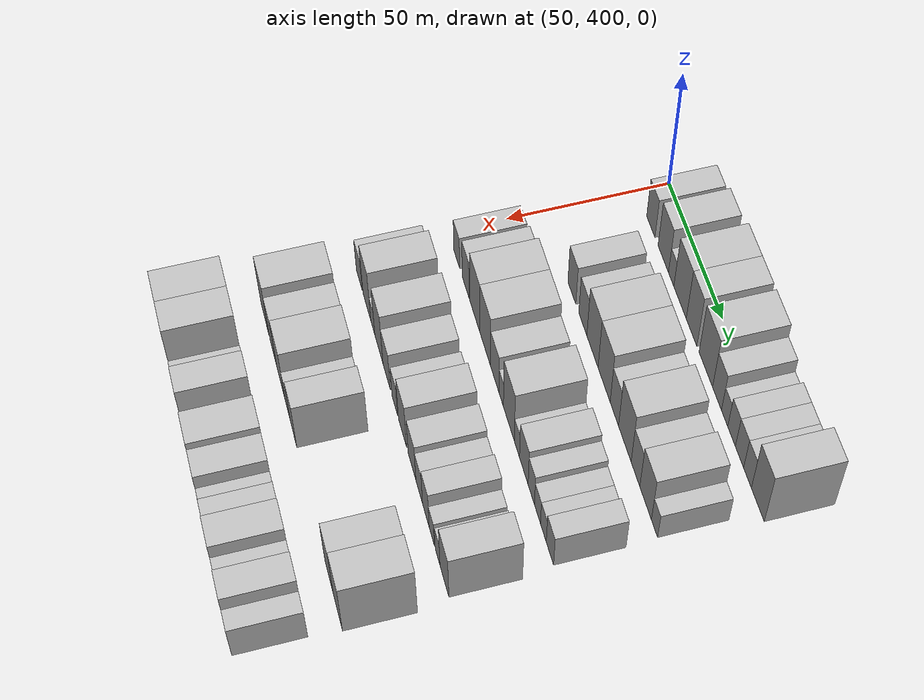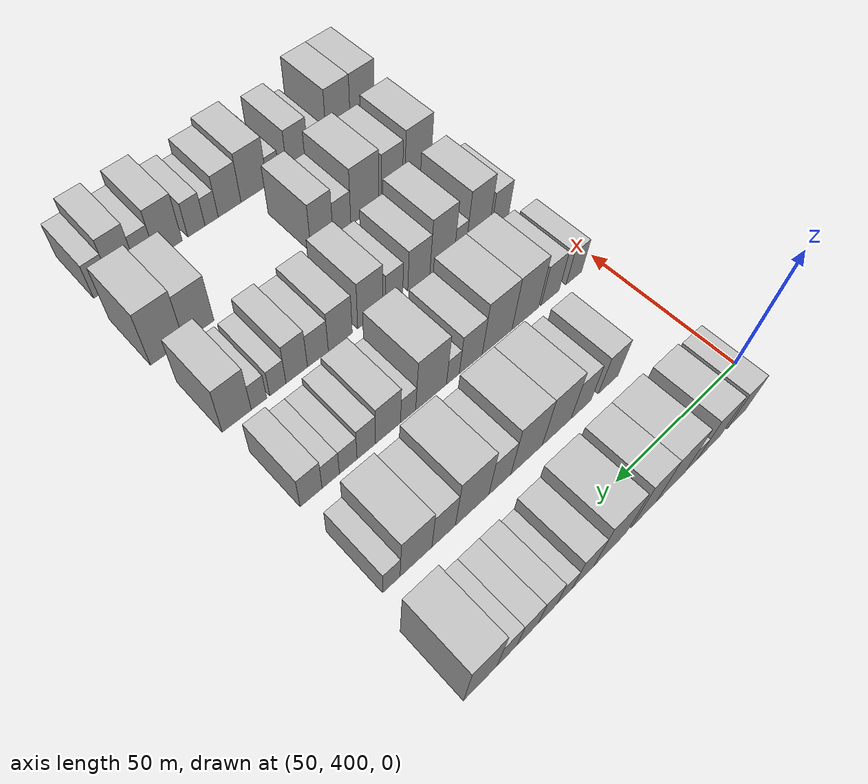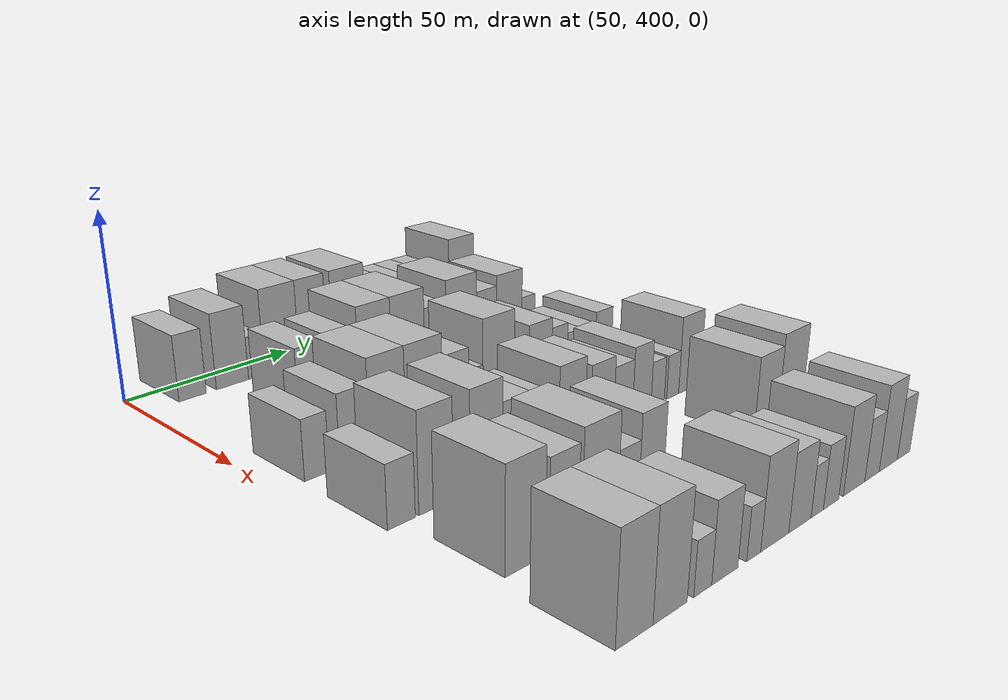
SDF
<sdf version="1.6">
 <world name="default">
  <model name="building_101">
   <static>1</static>
   <pose>50.0000 413.7388 0 0.000000 0.000000 0.000000</pose>
   <link name="link">
    <pose>0 0 9.00 0 0 0</pose>
    <collision name="collision"><geometry><box><size>20.0000 7.9604 18.0000</size></box></geometry></collision>
    <visual name="visual">
     <cast_shadows>0</cast_shadows>
     <geometry><box><size>20.0000 7.9604 18.0000</size></box></geometry>
     <material>
      <script>
       <uri>model://HANNAS_wall/materials/scripts</uri>
       <uri>model://HANNAS_wall/materials/textures</uri>
       <name>vrc/HANNAS_wall</name>
      </script>
     </material>
    </visual>
   </link>
  </model>
  <model name="building_102">
   <static>1</static>
   <pose>50.0000 425.6670 0 0.000000 0.000000 0.000000</pose>
   <link name="link">
    <pose>0 0 10.50 0 0 0</pose>
    <collision name="collision"><geometry><box><size>20.0000 9.8961 21.0000</size></box></geometry></collision>
    <visual name="visual">
     <cast_shadows>0</cast_shadows>
     <geometry><box><size>20.0000 9.8961 21.0000</size></box></geometry>
     <material>
      <script>
       <uri>model://HANNAS_wall/materials/scripts</uri>
       <uri>model://HANNAS_wall/materials/textures</uri>
       <name>vrc/HANNAS_wall</name>
      </script>
     </material>
    </visual>
   </link>
  </model>
  <model name="building_103">
   <static>1</static>
   <pose>50.0000 433.1329 0 0.000000 0.000000 0.000000</pose>
   <link name="link">
    <pose>0 0 6.00 0 0 0</pose>
    <collision name="collision"><geometry><box><size>20.0000 5.0356 12.0000</size></box></geometry></collision>
    <visual name="visual">
     <cast_shadows>0</cast_shadows>
     <geometry><box><size>20.0000 5.0356 12.0000</size></box></geometry>
     <material>
      <script>
       <uri>model://HANNAS_wall/materials/scripts</uri>
       <uri>model://HANNAS_wall/materials/textures</uri>
       <name>vrc/HANNAS_wall</name>
      </script>
     </material>
    </visual>
   </link>
  </model>
  <model name="building_104">
   <static>1</static>
   <pose>50.0000 441.3849 0 0.000000 0.000000 0.000000</pose>
   <link name="link">
    <pose>0 0 12.00 0 0 0</pose>
    <collision name="collision"><geometry><box><size>20.0000 11.4684 24.0000</size></box></geometry></collision>
    <visual name="visual">
     <cast_shadows>0</cast_shadows>
     <geometry><box><size>20.0000 11.4684 24.0000</size></box></geometry>
     <material>
      <script>
       <uri>model://HANNAS_wall/materials/scripts</uri>
       <uri>model://HANNAS_wall/materials/textures</uri>
       <name>vrc/HANNAS_wall</name>
      </script>
     </material>
    </visual>
   </link>
  </model>
  <model name="building_105">
   <static>1</static>
   <pose>50.0000 451.9271 0 0.000000 0.000000 0.000000</pose>
   <link name="link">
    <pose>0 0 12.00 0 0 0</pose>
    <collision name="collision"><geometry><box><size>20.0000 9.6160 24.0000</size></box></geometry></collision>
    <visual name="visual">
     <cast_shadows>0</cast_shadows>
     <geometry><box><size>20.0000 9.6160 24.0000</size></box></geometry>
     <material>
      <script>
       <uri>model://HANNAS_wall/materials/scripts</uri>
       <uri>model://HANNAS_wall/materials/textures</uri>
       <name>vrc/HANNAS_wall</name>
      </script>
     </material>
    </visual>
   </link>
  </model>
  <model name="building_106">
   <static>1</static>
   <pose>50.0000 464.7077 0 0.000000 0.000000 0.000000</pose>
   <link name="link">
    <pose>0 0 12.00 0 0 0</pose>
    <collision name="collision"><geometry><box><size>20.0000 11.9453 24.0000</size></box></geometry></collision>
    <visual name="visual">
     <cast_shadows>0</cast_shadows>
     <geometry><box><size>20.0000 11.9453 24.0000</size></box></geometry>
     <material>
      <script>
       <uri>model://HANNAS_wall/materials/scripts</uri>
       <uri>model://HANNAS_wall/materials/textures</uri>
       <name>vrc/HANNAS_wall</name>
      </script>
     </material>
    </visual>
   </link>
  </model>
  <model name="building_107">
   <static>1</static>
   <pose>50.0000 474.5362 0 0.000000 0.000000 0.000000</pose>
   <link name="link">
    <pose>0 0 9.00 0 0 0</pose>
    <collision name="collision"><geometry><box><size>20.0000 7.7115 18.0000</size></box></geometry></collision>
    <visual name="visual">
     <cast_shadows>0</cast_shadows>
     <geometry><box><size>20.0000 7.7115 18.0000</size></box></geometry>
     <material>
      <script>
       <uri>model://HANNAS_wall/materials/scripts</uri>
       <uri>model://HANNAS_wall/materials/textures</uri>
       <name>vrc/HANNAS_wall</name>
      </script>
     </material>
    </visual>
   </link>
  </model>
  <model name="building_108">
   <static>1</static>
   <pose>50.0000 481.1138 0 0.000000 0.000000 0.000000</pose>
   <link name="link">
    <pose>0 0 6.00 0 0 0</pose>
    <collision name="collision"><geometry><box><size>20.0000 5.4438 12.0000</size></box></geometry></collision>
    <visual name="visual">
     <cast_shadows>0</cast_shadows>
     <geometry><box><size>20.0000 5.4438 12.0000</size></box></geometry>
     <material>
      <script>
       <uri>model://HANNAS_wall/materials/scripts</uri>
       <uri>model://HANNAS_wall/materials/textures</uri>
       <name>vrc/HANNAS_wall</name>
      </script>
     </material>
    </visual>
   </link>
  </model>
  <model name="building_109">
   <static>1</static>
   <pose>50.0000 487.0704 0 0.000000 0.000000 0.000000</pose>
   <link name="link">
    <pose>0 0 7.50 0 0 0</pose>
    <collision name="collision"><geometry><box><size>20.0000 6.4696 15.0000</size></box></geometry></collision>
    <visual name="visual">
     <cast_shadows>0</cast_shadows>
     <geometry><box><size>20.0000 6.4696 15.0000</size></box></geometry>
     <material>
      <script>
       <uri>model://HANNAS_wall/materials/scripts</uri>
       <uri>model://HANNAS_wall/materials/textures</uri>
       <name>vrc/HANNAS_wall</name>
      </script>
     </material>
    </visual>
   </link>
  </model>
  <model name="building_110">
   <static>1</static>
   <pose>50.0000 493.7465 0 0.000000 0.000000 0.000000</pose>
   <link name="link">
    <pose>0 0 7.50 0 0 0</pose>
    <collision name="collision"><geometry><box><size>20.0000 6.8826 15.0000</size></box></geometry></collision>
    <visual name="visual">
     <cast_shadows>0</cast_shadows>
     <geometry><box><size>20.0000 6.8826 15.0000</size></box></geometry>
     <material>
      <script>
       <uri>model://HANNAS_wall/materials/scripts</uri>
       <uri>model://HANNAS_wall/materials/textures</uri>
       <name>vrc/HANNAS_wall</name>
      </script>
     </material>
    </visual>
   </link>
  </model>
  <model name="building_111">
   <static>1</static>
   <pose>50.0000 500.4157 0 0.000000 0.000000 0.000000</pose>
   <link name="link">
    <pose>0 0 7.50 0 0 0</pose>
    <collision name="collision"><geometry><box><size>20.0000 6.4557 15.0000</size></box></geometry></collision>
    <visual name="visual">
     <cast_shadows>0</cast_shadows>
     <geometry><box><size>20.0000 6.4557 15.0000</size></box></geometry>
     <material>
      <script>
       <uri>model://HANNAS_wall/materials/scripts</uri>
       <uri>model://HANNAS_wall/materials/textures</uri>
       <name>vrc/HANNAS_wall</name>
      </script>
     </material>
    </visual>
   </link>
  </model>
  <model name="building_112">
   <static>1</static>
   <pose>50.0000 508.8999 0 0.000000 0.000000 0.000000</pose>
   <link name="link">
    <pose>0 0 12.00 0 0 0</pose>
    <collision name="collision"><geometry><box><size>20.0000 10.5128 24.0000</size></box></geometry></collision>
    <visual name="visual">
     <cast_shadows>0</cast_shadows>
     <geometry><box><size>20.0000 10.5128 24.0000</size></box></geometry>
     <material>
      <script>
       <uri>model://HANNAS_wall/materials/scripts</uri>
       <uri>model://HANNAS_wall/materials/textures</uri>
       <name>vrc/HANNAS_wall</name>
      </script>
     </material>
    </visual>
   </link>
  </model>
  <model name="building_217">
   <static>1</static>
   <pose>79.0000 430.1788 0 0.000000 0.000000 0.000000</pose>
   <link name="link">
    <pose>0 0 9.00 0 0 0</pose>
    <collision name="collision"><geometry><box><size>20.0000 8.0644 18.0000</size></box></geometry></collision>
    <visual name="visual">
     <cast_shadows>0</cast_shadows>
     <geometry><box><size>20.0000 8.0644 18.0000</size></box></geometry>
     <material>
      <script>
       <uri>model://HANNAS_wall/materials/scripts</uri>
       <uri>model://HANNAS_wall/materials/textures</uri>
       <name>vrc/HANNAS_wall</name>
      </script>
     </material>
    </visual>
   </link>
  </model>
  <model name="building_218">
   <static>1</static>
   <pose>79.0000 441.2250 0 0.000000 0.000000 0.000000</pose>
   <link name="link">
    <pose>0 0 9.00 0 0 0</pose>
    <collision name="collision"><geometry><box><size>20.0000 8.0279 18.0000</size></box></geometry></collision>
    <visual name="visual">
     <cast_shadows>0</cast_shadows>
     <geometry><box><size>20.0000 8.0279 18.0000</size></box></geometry>
     <material>
      <script>
       <uri>model://HANNAS_wall/materials/scripts</uri>
       <uri>model://HANNAS_wall/materials/textures</uri>
       <name>vrc/HANNAS_wall</name>
      </script>
     </material>
    </visual>
   </link>
  </model>
  <model name="building_219">
   <static>1</static>
   <pose>79.0000 450.7496 0 0.000000 0.000000 0.000000</pose>
   <link name="link">
    <pose>0 0 12.00 0 0 0</pose>
    <collision name="collision"><geometry><box><size>20.0000 11.0213 24.0000</size></box></geometry></collision>
    <visual name="visual">
     <cast_shadows>0</cast_shadows>
     <geometry><box><size>20.0000 11.0213 24.0000</size></box></geometry>
     <material>
      <script>
       <uri>model://HANNAS_wall/materials/scripts</uri>
       <uri>model://HANNAS_wall/materials/textures</uri>
       <name>vrc/HANNAS_wall</name>
      </script>
     </material>
    </visual>
   </link>
  </model>
  <model name="building_220">
   <static>1</static>
   <pose>79.0000 462.0957 0 0.000000 0.000000 0.000000</pose>
   <link name="link">
    <pose>0 0 12.00 0 0 0</pose>
    <collision name="collision"><geometry><box><size>20.0000 11.6708 24.0000</size></box></geometry></collision>
    <visual name="visual">
     <cast_shadows>0</cast_shadows>
     <geometry><box><size>20.0000 11.6708 24.0000</size></box></geometry>
     <material>
      <script>
       <uri>model://HANNAS_wall/materials/scripts</uri>
       <uri>model://HANNAS_wall/materials/textures</uri>
       <name>vrc/HANNAS_wall</name>
      </script>
     </material>
    </visual>
   </link>
  </model>
  <model name="building_221">
   <static>1</static>
   <pose>79.0000 471.8856 0 0.000000 0.000000 0.000000</pose>
   <link name="link">
    <pose>0 0 9.00 0 0 0</pose>
    <collision name="collision"><geometry><box><size>20.0000 7.9091 18.0000</size></box></geometry></collision>
    <visual name="visual">
     <cast_shadows>0</cast_shadows>
     <geometry><box><size>20.0000 7.9091 18.0000</size></box></geometry>
     <material>
      <script>
       <uri>model://HANNAS_wall/materials/scripts</uri>
       <uri>model://HANNAS_wall/materials/textures</uri>
       <name>vrc/HANNAS_wall</name>
      </script>
     </material>
    </visual>
   </link>
  </model>
  <model name="building_222">
   <static>1</static>
   <pose>79.0000 481.6791 0 0.000000 0.000000 0.000000</pose>
   <link name="link">
    <pose>0 0 12.00 0 0 0</pose>
    <collision name="collision"><geometry><box><size>20.0000 11.6781 24.0000</size></box></geometry></collision>
    <visual name="visual">
     <cast_shadows>0</cast_shadows>
     <geometry><box><size>20.0000 11.6781 24.0000</size></box></geometry>
     <material>
      <script>
       <uri>model://HANNAS_wall/materials/scripts</uri>
       <uri>model://HANNAS_wall/materials/textures</uri>
       <name>vrc/HANNAS_wall</name>
      </script>
     </material>
    </visual>
   </link>
  </model>
  <model name="building_223">
   <static>1</static>
   <pose>79.0000 491.4690 0 0.000000 0.000000 0.000000</pose>
   <link name="link">
    <pose>0 0 9.00 0 0 0</pose>
    <collision name="collision"><geometry><box><size>20.0000 7.9017 18.0000</size></box></geometry></collision>
    <visual name="visual">
     <cast_shadows>0</cast_shadows>
     <geometry><box><size>20.0000 7.9017 18.0000</size></box></geometry>
     <material>
      <script>
       <uri>model://HANNAS_wall/materials/scripts</uri>
       <uri>model://HANNAS_wall/materials/textures</uri>
       <name>vrc/HANNAS_wall</name>
      </script>
     </material>
    </visual>
   </link>
  </model>
  <model name="building_224">
   <static>1</static>
   <pose>79.0000 500.5907 0 0.000000 0.000000 0.000000</pose>
   <link name="link">
    <pose>0 0 10.50 0 0 0</pose>
    <collision name="collision"><geometry><box><size>20.0000 10.3416 21.0000</size></box></geometry></collision>
    <visual name="visual">
     <cast_shadows>0</cast_shadows>
     <geometry><box><size>20.0000 10.3416 21.0000</size></box></geometry>
     <material>
      <script>
       <uri>model://HANNAS_wall/materials/scripts</uri>
       <uri>model://HANNAS_wall/materials/textures</uri>
       <name>vrc/HANNAS_wall</name>
      </script>
     </material>
    </visual>
   </link>
  </model>
  <model name="building_225">
   <static>1</static>
   <pose>79.0000 508.5070 0 0.000000 0.000000 0.000000</pose>
   <link name="link">
    <pose>0 0 6.00 0 0 0</pose>
    <collision name="collision"><geometry><box><size>20.0000 5.4911 12.0000</size></box></geometry></collision>
    <visual name="visual">
     <cast_shadows>0</cast_shadows>
     <geometry><box><size>20.0000 5.4911 12.0000</size></box></geometry>
     <material>
      <script>
       <uri>model://HANNAS_wall/materials/scripts</uri>
       <uri>model://HANNAS_wall/materials/textures</uri>
       <name>vrc/HANNAS_wall</name>
      </script>
     </material>
    </visual>
   </link>
  </model>
  <model name="building_325">
   <static>1</static>
   <pose>108.0000 410.2638 0 0.000000 0.000000 0.000000</pose>
   <link name="link">
    <pose>0 0 7.50 0 0 0</pose>
    <collision name="collision"><geometry><box><size>20.0000 6.7455 15.0000</size></box></geometry></collision>
    <visual name="visual">
     <cast_shadows>0</cast_shadows>
     <geometry><box><size>20.0000 6.7455 15.0000</size></box></geometry>
     <material>
      <script>
       <uri>model://HANNAS_wall/materials/scripts</uri>
       <uri>model://HANNAS_wall/materials/textures</uri>
       <name>vrc/HANNAS_wall</name>
      </script>
     </material>
    </visual>
   </link>
  </model>
  <model name="building_326">
   <static>1</static>
   <pose>108.0000 420.4646 0 0.000000 0.000000 0.000000</pose>
   <link name="link">
    <pose>0 0 9.00 0 0 0</pose>
    <collision name="collision"><geometry><box><size>20.0000 7.6561 18.0000</size></box></geometry></collision>
    <visual name="visual">
     <cast_shadows>0</cast_shadows>
     <geometry><box><size>20.0000 7.6561 18.0000</size></box></geometry>
     <material>
      <script>
       <uri>model://HANNAS_wall/materials/scripts</uri>
       <uri>model://HANNAS_wall/materials/textures</uri>
       <name>vrc/HANNAS_wall</name>
      </script>
     </material>
    </visual>
   </link>
  </model>
  <model name="building_327">
   <static>1</static>
   <pose>108.0000 430.7641 0 0.000000 0.000000 0.000000</pose>
   <link name="link">
    <pose>0 0 12.00 0 0 0</pose>
    <collision name="collision"><geometry><box><size>20.0000 10.9428 24.0000</size></box></geometry></collision>
    <visual name="visual">
     <cast_shadows>0</cast_shadows>
     <geometry><box><size>20.0000 10.9428 24.0000</size></box></geometry>
     <material>
      <script>
       <uri>model://HANNAS_wall/materials/scripts</uri>
       <uri>model://HANNAS_wall/materials/textures</uri>
       <name>vrc/HANNAS_wall</name>
      </script>
     </material>
    </visual>
   </link>
  </model>
  <model name="building_328">
   <static>1</static>
   <pose>108.0000 442.1375 0 0.000000 0.000000 0.000000</pose>
   <link name="link">
    <pose>0 0 12.00 0 0 0</pose>
    <collision name="collision"><geometry><box><size>20.0000 11.8039 24.0000</size></box></geometry></collision>
    <visual name="visual">
     <cast_shadows>0</cast_shadows>
     <geometry><box><size>20.0000 11.8039 24.0000</size></box></geometry>
     <material>
      <script>
       <uri>model://HANNAS_wall/materials/scripts</uri>
       <uri>model://HANNAS_wall/materials/textures</uri>
       <name>vrc/HANNAS_wall</name>
      </script>
     </material>
    </visual>
   </link>
  </model>
  <model name="building_329">
   <static>1</static>
   <pose>108.0000 452.4334 0 0.000000 0.000000 0.000000</pose>
   <link name="link">
    <pose>0 0 9.00 0 0 0</pose>
    <collision name="collision"><geometry><box><size>20.0000 8.7878 18.0000</size></box></geometry></collision>
    <visual name="visual">
     <cast_shadows>0</cast_shadows>
     <geometry><box><size>20.0000 8.7878 18.0000</size></box></geometry>
     <material>
      <script>
       <uri>model://HANNAS_wall/materials/scripts</uri>
       <uri>model://HANNAS_wall/materials/textures</uri>
       <name>vrc/HANNAS_wall</name>
      </script>
     </material>
    </visual>
   </link>
  </model>
  <model name="building_330">
   <static>1</static>
   <pose>108.0000 459.2490 0 0.000000 0.000000 0.000000</pose>
   <link name="link">
    <pose>0 0 6.00 0 0 0</pose>
    <collision name="collision"><geometry><box><size>20.0000 4.8435 12.0000</size></box></geometry></collision>
    <visual name="visual">
     <cast_shadows>0</cast_shadows>
     <geometry><box><size>20.0000 4.8435 12.0000</size></box></geometry>
     <material>
      <script>
       <uri>model://HANNAS_wall/materials/scripts</uri>
       <uri>model://HANNAS_wall/materials/textures</uri>
       <name>vrc/HANNAS_wall</name>
      </script>
     </material>
    </visual>
   </link>
  </model>
  <model name="building_331">
   <static>1</static>
   <pose>108.0000 467.2997 0 0.000000 0.000000 0.000000</pose>
   <link name="link">
    <pose>0 0 12.00 0 0 0</pose>
    <collision name="collision"><geometry><box><size>20.0000 11.2579 24.0000</size></box></geometry></collision>
    <visual name="visual">
     <cast_shadows>0</cast_shadows>
     <geometry><box><size>20.0000 11.2579 24.0000</size></box></geometry>
     <material>
      <script>
       <uri>model://HANNAS_wall/materials/scripts</uri>
       <uri>model://HANNAS_wall/materials/textures</uri>
       <name>vrc/HANNAS_wall</name>
      </script>
     </material>
    </visual>
   </link>
  </model>
  <model name="building_332">
   <static>1</static>
   <pose>108.0000 475.6202 0 0.000000 0.000000 0.000000</pose>
   <link name="link">
    <pose>0 0 6.00 0 0 0</pose>
    <collision name="collision"><geometry><box><size>20.0000 5.3829 12.0000</size></box></geometry></collision>
    <visual name="visual">
     <cast_shadows>0</cast_shadows>
     <geometry><box><size>20.0000 5.3829 12.0000</size></box></geometry>
     <material>
      <script>
       <uri>model://HANNAS_wall/materials/scripts</uri>
       <uri>model://HANNAS_wall/materials/textures</uri>
       <name>vrc/HANNAS_wall</name>
      </script>
     </material>
    </visual>
   </link>
  </model>
  <model name="building_333">
   <static>1</static>
   <pose>108.0000 482.6681 0 0.000000 0.000000 0.000000</pose>
   <link name="link">
    <pose>0 0 9.00 0 0 0</pose>
    <collision name="collision"><geometry><box><size>20.0000 8.7129 18.0000</size></box></geometry></collision>
    <visual name="visual">
     <cast_shadows>0</cast_shadows>
     <geometry><box><size>20.0000 8.7129 18.0000</size></box></geometry>
     <material>
      <script>
       <uri>model://HANNAS_wall/materials/scripts</uri>
       <uri>model://HANNAS_wall/materials/textures</uri>
       <name>vrc/HANNAS_wall</name>
      </script>
     </material>
    </visual>
   </link>
  </model>
  <model name="building_334">
   <static>1</static>
   <pose>108.0000 490.1605 0 0.000000 0.000000 0.000000</pose>
   <link name="link">
    <pose>0 0 7.50 0 0 0</pose>
    <collision name="collision"><geometry><box><size>20.0000 6.2719 15.0000</size></box></geometry></collision>
    <visual name="visual">
     <cast_shadows>0</cast_shadows>
     <geometry><box><size>20.0000 6.2719 15.0000</size></box></geometry>
     <material>
      <script>
       <uri>model://HANNAS_wall/materials/scripts</uri>
       <uri>model://HANNAS_wall/materials/textures</uri>
       <name>vrc/HANNAS_wall</name>
      </script>
     </material>
    </visual>
   </link>
  </model>
  <model name="building_335">
   <static>1</static>
   <pose>108.0000 496.2352 0 0.000000 0.000000 0.000000</pose>
   <link name="link">
    <pose>0 0 6.00 0 0 0</pose>
    <collision name="collision"><geometry><box><size>20.0000 5.8776 12.0000</size></box></geometry></collision>
    <visual name="visual">
     <cast_shadows>0</cast_shadows>
     <geometry><box><size>20.0000 5.8776 12.0000</size></box></geometry>
     <material>
      <script>
       <uri>model://HANNAS_wall/materials/scripts</uri>
       <uri>model://HANNAS_wall/materials/textures</uri>
       <name>vrc/HANNAS_wall</name>
      </script>
     </material>
    </visual>
   </link>
  </model>
  <model name="building_336">
   <static>1</static>
   <pose>108.0000 502.0043 0 0.000000 0.000000 0.000000</pose>
   <link name="link">
    <pose>0 0 6.00 0 0 0</pose>
    <collision name="collision"><geometry><box><size>20.0000 5.6604 12.0000</size></box></geometry></collision>
    <visual name="visual">
     <cast_shadows>0</cast_shadows>
     <geometry><box><size>20.0000 5.6604 12.0000</size></box></geometry>
     <material>
      <script>
       <uri>model://HANNAS_wall/materials/scripts</uri>
       <uri>model://HANNAS_wall/materials/textures</uri>
       <name>vrc/HANNAS_wall</name>
      </script>
     </material>
    </visual>
   </link>
  </model>
  <model name="building_337">
   <static>1</static>
   <pose>108.0000 508.3584 0 0.000000 0.000000 0.000000</pose>
   <link name="link">
    <pose>0 0 7.50 0 0 0</pose>
    <collision name="collision"><geometry><box><size>20.0000 7.0478 15.0000</size></box></geometry></collision>
    <visual name="visual">
     <cast_shadows>0</cast_shadows>
     <geometry><box><size>20.0000 7.0478 15.0000</size></box></geometry>
     <material>
      <script>
       <uri>model://HANNAS_wall/materials/scripts</uri>
       <uri>model://HANNAS_wall/materials/textures</uri>
       <name>vrc/HANNAS_wall</name>
      </script>
     </material>
    </visual>
   </link>
  </model>
  <model name="building_437">
   <static>1</static>
   <pose>137.0000 410.0616 0 0.000000 0.000000 0.000000</pose>
   <link name="link">
    <pose>0 0 7.50 0 0 0</pose>
    <collision name="collision"><geometry><box><size>20.0000 7.4933 15.0000</size></box></geometry></collision>
    <visual name="visual">
     <cast_shadows>0</cast_shadows>
     <geometry><box><size>20.0000 7.4933 15.0000</size></box></geometry>
     <material>
      <script>
       <uri>model://HANNAS_wall/materials/scripts</uri>
       <uri>model://HANNAS_wall/materials/textures</uri>
       <name>vrc/HANNAS_wall</name>
      </script>
     </material>
    </visual>
   </link>
  </model>
  <model name="building_438">
   <static>1</static>
   <pose>137.0000 419.7083 0 0.000000 0.000000 0.000000</pose>
   <link name="link">
    <pose>0 0 12.00 0 0 0</pose>
    <collision name="collision"><geometry><box><size>20.0000 9.8002 24.0000</size></box></geometry></collision>
    <visual name="visual">
     <cast_shadows>0</cast_shadows>
     <geometry><box><size>20.0000 9.8002 24.0000</size></box></geometry>
     <material>
      <script>
       <uri>model://HANNAS_wall/materials/scripts</uri>
       <uri>model://HANNAS_wall/materials/textures</uri>
       <name>vrc/HANNAS_wall</name>
      </script>
     </material>
    </visual>
   </link>
  </model>
  <model name="building_439">
   <static>1</static>
   <pose>137.0000 427.0982 0 0.000000 0.000000 0.000000</pose>
   <link name="link">
    <pose>0 0 6.00 0 0 0</pose>
    <collision name="collision"><geometry><box><size>20.0000 4.9795 12.0000</size></box></geometry></collision>
    <visual name="visual">
     <cast_shadows>0</cast_shadows>
     <geometry><box><size>20.0000 4.9795 12.0000</size></box></geometry>
     <material>
      <script>
       <uri>model://HANNAS_wall/materials/scripts</uri>
       <uri>model://HANNAS_wall/materials/textures</uri>
       <name>vrc/HANNAS_wall</name>
      </script>
     </material>
    </visual>
   </link>
  </model>
  <model name="building_440">
   <static>1</static>
   <pose>137.0000 434.5330 0 0.000000 0.000000 0.000000</pose>
   <link name="link">
    <pose>0 0 12.00 0 0 0</pose>
    <collision name="collision"><geometry><box><size>20.0000 9.8902 24.0000</size></box></geometry></collision>
    <visual name="visual">
     <cast_shadows>0</cast_shadows>
     <geometry><box><size>20.0000 9.8902 24.0000</size></box></geometry>
     <material>
      <script>
       <uri>model://HANNAS_wall/materials/scripts</uri>
       <uri>model://HANNAS_wall/materials/textures</uri>
       <name>vrc/HANNAS_wall</name>
      </script>
     </material>
    </visual>
   </link>
  </model>
  <model name="building_441">
   <static>1</static>
   <pose>137.0000 443.8494 0 0.000000 0.000000 0.000000</pose>
   <link name="link">
    <pose>0 0 9.00 0 0 0</pose>
    <collision name="collision"><geometry><box><size>20.0000 8.7425 18.0000</size></box></geometry></collision>
    <visual name="visual">
     <cast_shadows>0</cast_shadows>
     <geometry><box><size>20.0000 8.7425 18.0000</size></box></geometry>
     <material>
      <script>
       <uri>model://HANNAS_wall/materials/scripts</uri>
       <uri>model://HANNAS_wall/materials/textures</uri>
       <name>vrc/HANNAS_wall</name>
      </script>
     </material>
    </visual>
   </link>
  </model>
  <model name="building_442">
   <static>1</static>
   <pose>137.0000 453.5243 0 0.000000 0.000000 0.000000</pose>
   <link name="link">
    <pose>0 0 7.50 0 0 0</pose>
    <collision name="collision"><geometry><box><size>20.0000 6.6074 15.0000</size></box></geometry></collision>
    <visual name="visual">
     <cast_shadows>0</cast_shadows>
     <geometry><box><size>20.0000 6.6074 15.0000</size></box></geometry>
     <material>
      <script>
       <uri>model://HANNAS_wall/materials/scripts</uri>
       <uri>model://HANNAS_wall/materials/textures</uri>
       <name>vrc/HANNAS_wall</name>
      </script>
     </material>
    </visual>
   </link>
  </model>
  <model name="building_443">
   <static>1</static>
   <pose>137.0000 462.5215 0 0.000000 0.000000 0.000000</pose>
   <link name="link">
    <pose>0 0 10.50 0 0 0</pose>
    <collision name="collision"><geometry><box><size>20.0000 9.3868 21.0000</size></box></geometry></collision>
    <visual name="visual">
     <cast_shadows>0</cast_shadows>
     <geometry><box><size>20.0000 9.3868 21.0000</size></box></geometry>
     <material>
      <script>
       <uri>model://HANNAS_wall/materials/scripts</uri>
       <uri>model://HANNAS_wall/materials/textures</uri>
       <name>vrc/HANNAS_wall</name>
      </script>
     </material>
    </visual>
   </link>
  </model>
  <model name="building_444">
   <static>1</static>
   <pose>137.0000 473.5411 0 0.000000 0.000000 0.000000</pose>
   <link name="link">
    <pose>0 0 9.00 0 0 0</pose>
    <collision name="collision"><geometry><box><size>20.0000 8.6524 18.0000</size></box></geometry></collision>
    <visual name="visual">
     <cast_shadows>0</cast_shadows>
     <geometry><box><size>20.0000 8.6524 18.0000</size></box></geometry>
     <material>
      <script>
       <uri>model://HANNAS_wall/materials/scripts</uri>
       <uri>model://HANNAS_wall/materials/textures</uri>
       <name>vrc/HANNAS_wall</name>
      </script>
     </material>
    </visual>
   </link>
  </model>
  <model name="building_445">
   <static>1</static>
   <pose>137.0000 481.5412 0 0.000000 0.000000 0.000000</pose>
   <link name="link">
    <pose>0 0 7.50 0 0 0</pose>
    <collision name="collision"><geometry><box><size>20.0000 7.3478 15.0000</size></box></geometry></collision>
    <visual name="visual">
     <cast_shadows>0</cast_shadows>
     <geometry><box><size>20.0000 7.3478 15.0000</size></box></geometry>
     <material>
      <script>
       <uri>model://HANNAS_wall/materials/scripts</uri>
       <uri>model://HANNAS_wall/materials/textures</uri>
       <name>vrc/HANNAS_wall</name>
      </script>
     </material>
    </visual>
   </link>
  </model>
  <model name="building_446">
   <static>1</static>
   <pose>137.0000 488.9160 0 0.000000 0.000000 0.000000</pose>
   <link name="link">
    <pose>0 0 9.00 0 0 0</pose>
    <collision name="collision"><geometry><box><size>20.0000 7.4019 18.0000</size></box></geometry></collision>
    <visual name="visual">
     <cast_shadows>0</cast_shadows>
     <geometry><box><size>20.0000 7.4019 18.0000</size></box></geometry>
     <material>
      <script>
       <uri>model://HANNAS_wall/materials/scripts</uri>
       <uri>model://HANNAS_wall/materials/textures</uri>
       <name>vrc/HANNAS_wall</name>
      </script>
     </material>
    </visual>
   </link>
  </model>
  <model name="building_447">
   <static>1</static>
   <pose>137.0000 495.3746 0 0.000000 0.000000 0.000000</pose>
   <link name="link">
    <pose>0 0 6.00 0 0 0</pose>
    <collision name="collision"><geometry><box><size>20.0000 5.5153 12.0000</size></box></geometry></collision>
    <visual name="visual">
     <cast_shadows>0</cast_shadows>
     <geometry><box><size>20.0000 5.5153 12.0000</size></box></geometry>
     <material>
      <script>
       <uri>model://HANNAS_wall/materials/scripts</uri>
       <uri>model://HANNAS_wall/materials/textures</uri>
       <name>vrc/HANNAS_wall</name>
      </script>
     </material>
    </visual>
   </link>
  </model>
  <model name="building_448">
   <static>1</static>
   <pose>137.0000 501.6869 0 0.000000 0.000000 0.000000</pose>
   <link name="link">
    <pose>0 0 6.00 0 0 0</pose>
    <collision name="collision"><geometry><box><size>20.0000 5.1093 12.0000</size></box></geometry></collision>
    <visual name="visual">
     <cast_shadows>0</cast_shadows>
     <geometry><box><size>20.0000 5.1093 12.0000</size></box></geometry>
     <material>
      <script>
       <uri>model://HANNAS_wall/materials/scripts</uri>
       <uri>model://HANNAS_wall/materials/textures</uri>
       <name>vrc/HANNAS_wall</name>
      </script>
     </material>
    </visual>
   </link>
  </model>
  <model name="building_449">
   <static>1</static>
   <pose>137.0000 508.9641 0 0.000000 0.000000 0.000000</pose>
   <link name="link">
    <pose>0 0 10.50 0 0 0</pose>
    <collision name="collision"><geometry><box><size>20.0000 9.4451 21.0000</size></box></geometry></collision>
    <visual name="visual">
     <cast_shadows>0</cast_shadows>
     <geometry><box><size>20.0000 9.4451 21.0000</size></box></geometry>
     <material>
      <script>
       <uri>model://HANNAS_wall/materials/scripts</uri>
       <uri>model://HANNAS_wall/materials/textures</uri>
       <name>vrc/HANNAS_wall</name>
      </script>
     </material>
    </visual>
   </link>
  </model>
  <model name="building_546">
   <static>1</static>
   <pose>166.0000 416.4637 0 0.000000 0.000000 0.000000</pose>
   <link name="link">
    <pose>0 0 12.00 0 0 0</pose>
    <collision name="collision"><geometry><box><size>20.0000 11.1097 24.0000</size></box></geometry></collision>
    <visual name="visual">
     <cast_shadows>0</cast_shadows>
     <geometry><box><size>20.0000 11.1097 24.0000</size></box></geometry>
     <material>
      <script>
       <uri>model://HANNAS_wall/materials/scripts</uri>
       <uri>model://HANNAS_wall/materials/textures</uri>
       <name>vrc/HANNAS_wall</name>
      </script>
     </material>
    </visual>
   </link>
  </model>
  <model name="building_547">
   <static>1</static>
   <pose>166.0000 427.3898 0 0.000000 0.000000 0.000000</pose>
   <link name="link">
    <pose>0 0 10.50 0 0 0</pose>
    <collision name="collision"><geometry><box><size>20.0000 8.7425 21.0000</size></box></geometry></collision>
    <visual name="visual">
     <cast_shadows>0</cast_shadows>
     <geometry><box><size>20.0000 8.7425 21.0000</size></box></geometry>
     <material>
      <script>
       <uri>model://HANNAS_wall/materials/scripts</uri>
       <uri>model://HANNAS_wall/materials/textures</uri>
       <name>vrc/HANNAS_wall</name>
      </script>
     </material>
    </visual>
   </link>
  </model>
  <model name="building_548">
   <static>1</static>
   <pose>166.0000 438.4074 0 0.000000 0.000000 0.000000</pose>
   <link name="link">
    <pose>0 0 12.00 0 0 0</pose>
    <collision name="collision"><geometry><box><size>20.0000 11.2927 24.0000</size></box></geometry></collision>
    <visual name="visual">
     <cast_shadows>0</cast_shadows>
     <geometry><box><size>20.0000 11.2927 24.0000</size></box></geometry>
     <material>
      <script>
       <uri>model://HANNAS_wall/materials/scripts</uri>
       <uri>model://HANNAS_wall/materials/textures</uri>
       <name>vrc/HANNAS_wall</name>
      </script>
     </material>
    </visual>
   </link>
  </model>
  <model name="building_549">
   <static>1</static>
   <pose>166.0000 447.5360 0 0.000000 0.000000 0.000000</pose>
   <link name="link">
    <pose>0 0 7.50 0 0 0</pose>
    <collision name="collision"><geometry><box><size>20.0000 6.9645 15.0000</size></box></geometry></collision>
    <visual name="visual">
     <cast_shadows>0</cast_shadows>
     <geometry><box><size>20.0000 6.9645 15.0000</size></box></geometry>
     <material>
      <script>
       <uri>model://HANNAS_wall/materials/scripts</uri>
       <uri>model://HANNAS_wall/materials/textures</uri>
       <name>vrc/HANNAS_wall</name>
      </script>
     </material>
    </visual>
   </link>
  </model>
  <model name="building_550">
   <static>1</static>
   <pose>166.0000 455.2702 0 0.000000 0.000000 0.000000</pose>
   <link name="link">
    <pose>0 0 10.50 0 0 0</pose>
    <collision name="collision"><geometry><box><size>20.0000 8.5039 21.0000</size></box></geometry></collision>
    <visual name="visual">
     <cast_shadows>0</cast_shadows>
     <geometry><box><size>20.0000 8.5039 21.0000</size></box></geometry>
     <material>
      <script>
       <uri>model://HANNAS_wall/materials/scripts</uri>
       <uri>model://HANNAS_wall/materials/textures</uri>
       <name>vrc/HANNAS_wall</name>
      </script>
     </material>
    </visual>
   </link>
  </model>
  <model name="building_551">
   <static>1</static>
   <pose>166.0000 499.7434 0 0.000000 0.000000 0.000000</pose>
   <link name="link">
    <pose>0 0 10.50 0 0 0</pose>
    <collision name="collision"><geometry><box><size>20.0000 10.1475 21.0000</size></box></geometry></collision>
    <visual name="visual">
     <cast_shadows>0</cast_shadows>
     <geometry><box><size>20.0000 10.1475 21.0000</size></box></geometry>
     <material>
      <script>
       <uri>model://HANNAS_wall/materials/scripts</uri>
       <uri>model://HANNAS_wall/materials/textures</uri>
       <name>vrc/HANNAS_wall</name>
      </script>
     </material>
    </visual>
   </link>
  </model>
  <model name="building_552">
   <static>1</static>
   <pose>166.0000 510.3302 0 0.000000 0.000000 0.000000</pose>
   <link name="link">
    <pose>0 0 12.00 0 0 0</pose>
    <collision name="collision"><geometry><box><size>20.0000 11.0262 24.0000</size></box></geometry></collision>
    <visual name="visual">
     <cast_shadows>0</cast_shadows>
     <geometry><box><size>20.0000 11.0262 24.0000</size></box></geometry>
     <material>
      <script>
       <uri>model://HANNAS_wall/materials/scripts</uri>
       <uri>model://HANNAS_wall/materials/textures</uri>
       <name>vrc/HANNAS_wall</name>
      </script>
     </material>
    </visual>
   </link>
  </model>
  <model name="building_662">
   <static>1</static>
   <pose>195.0000 413.3688 0 0.000000 0.000000 0.000000</pose>
   <link name="link">
    <pose>0 0 12.00 0 0 0</pose>
    <collision name="collision"><geometry><box><size>20.0000 10.3660 24.0000</size></box></geometry></collision>
    <visual name="visual">
     <cast_shadows>0</cast_shadows>
     <geometry><box><size>20.0000 10.3660 24.0000</size></box></geometry>
     <material>
      <script>
       <uri>model://HANNAS_wall/materials/scripts</uri>
       <uri>model://HANNAS_wall/materials/textures</uri>
       <name>vrc/HANNAS_wall</name>
      </script>
     </material>
    </visual>
   </link>
  </model>
  <model name="building_663">
   <static>1</static>
   <pose>195.0000 423.5832 0 0.000000 0.000000 0.000000</pose>
   <link name="link">
    <pose>0 0 12.00 0 0 0</pose>
    <collision name="collision"><geometry><box><size>20.0000 10.0628 24.0000</size></box></geometry></collision>
    <visual name="visual">
     <cast_shadows>0</cast_shadows>
     <geometry><box><size>20.0000 10.0628 24.0000</size></box></geometry>
     <material>
      <script>
       <uri>model://HANNAS_wall/materials/scripts</uri>
       <uri>model://HANNAS_wall/materials/textures</uri>
       <name>vrc/HANNAS_wall</name>
      </script>
     </material>
    </visual>
   </link>
  </model>
  <model name="building_664">
   <static>1</static>
   <pose>195.0000 433.4201 0 0.000000 0.000000 0.000000</pose>
   <link name="link">
    <pose>0 0 6.00 0 0 0</pose>
    <collision name="collision"><geometry><box><size>20.0000 5.6111 12.0000</size></box></geometry></collision>
    <visual name="visual">
     <cast_shadows>0</cast_shadows>
     <geometry><box><size>20.0000 5.6111 12.0000</size></box></geometry>
     <material>
      <script>
       <uri>model://HANNAS_wall/materials/scripts</uri>
       <uri>model://HANNAS_wall/materials/textures</uri>
       <name>vrc/HANNAS_wall</name>
      </script>
     </material>
    </visual>
   </link>
  </model>
  <model name="building_665">
   <static>1</static>
   <pose>195.0000 440.5349 0 0.000000 0.000000 0.000000</pose>
   <link name="link">
    <pose>0 0 9.00 0 0 0</pose>
    <collision name="collision"><geometry><box><size>20.0000 8.6185 18.0000</size></box></geometry></collision>
    <visual name="visual">
     <cast_shadows>0</cast_shadows>
     <geometry><box><size>20.0000 8.6185 18.0000</size></box></geometry>
     <material>
      <script>
       <uri>model://HANNAS_wall/materials/scripts</uri>
       <uri>model://HANNAS_wall/materials/textures</uri>
       <name>vrc/HANNAS_wall</name>
      </script>
     </material>
    </visual>
   </link>
  </model>
  <model name="building_666">
   <static>1</static>
   <pose>195.0000 450.2711 0 0.000000 0.000000 0.000000</pose>
   <link name="link">
    <pose>0 0 6.00 0 0 0</pose>
    <collision name="collision"><geometry><box><size>20.0000 4.8540 12.0000</size></box></geometry></collision>
    <visual name="visual">
     <cast_shadows>0</cast_shadows>
     <geometry><box><size>20.0000 4.8540 12.0000</size></box></geometry>
     <material>
      <script>
       <uri>model://HANNAS_wall/materials/scripts</uri>
       <uri>model://HANNAS_wall/materials/textures</uri>
       <name>vrc/HANNAS_wall</name>
      </script>
     </material>
    </visual>
   </link>
  </model>
  <model name="building_667">
   <static>1</static>
   <pose>195.0000 457.7836 0 0.000000 0.000000 0.000000</pose>
   <link name="link">
    <pose>0 0 10.50 0 0 0</pose>
    <collision name="collision"><geometry><box><size>20.0000 10.1709 21.0000</size></box></geometry></collision>
    <visual name="visual">
     <cast_shadows>0</cast_shadows>
     <geometry><box><size>20.0000 10.1709 21.0000</size></box></geometry>
     <material>
      <script>
       <uri>model://HANNAS_wall/materials/scripts</uri>
       <uri>model://HANNAS_wall/materials/textures</uri>
       <name>vrc/HANNAS_wall</name>
      </script>
     </material>
    </visual>
   </link>
  </model>
  <model name="building_668">
   <static>1</static>
   <pose>195.0000 467.1638 0 0.000000 0.000000 0.000000</pose>
   <link name="link">
    <pose>0 0 9.00 0 0 0</pose>
    <collision name="collision"><geometry><box><size>20.0000 8.5895 18.0000</size></box></geometry></collision>
    <visual name="visual">
     <cast_shadows>0</cast_shadows>
     <geometry><box><size>20.0000 8.5895 18.0000</size></box></geometry>
     <material>
      <script>
       <uri>model://HANNAS_wall/materials/scripts</uri>
       <uri>model://HANNAS_wall/materials/textures</uri>
       <name>vrc/HANNAS_wall</name>
      </script>
     </material>
    </visual>
   </link>
  </model>
  <model name="building_669">
   <static>1</static>
   <pose>195.0000 473.9071 0 0.000000 0.000000 0.000000</pose>
   <link name="link">
    <pose>0 0 6.00 0 0 0</pose>
    <collision name="collision"><geometry><box><size>20.0000 4.8970 12.0000</size></box></geometry></collision>
    <visual name="visual">
     <cast_shadows>0</cast_shadows>
     <geometry><box><size>20.0000 4.8970 12.0000</size></box></geometry>
     <material>
      <script>
       <uri>model://HANNAS_wall/materials/scripts</uri>
       <uri>model://HANNAS_wall/materials/textures</uri>
       <name>vrc/HANNAS_wall</name>
      </script>
     </material>
    </visual>
   </link>
  </model>
  <model name="building_670">
   <static>1</static>
   <pose>195.0000 479.5011 0 0.000000 0.000000 0.000000</pose>
   <link name="link">
    <pose>0 0 7.50 0 0 0</pose>
    <collision name="collision"><geometry><box><size>20.0000 6.2910 15.0000</size></box></geometry></collision>
    <visual name="visual">
     <cast_shadows>0</cast_shadows>
     <geometry><box><size>20.0000 6.2910 15.0000</size></box></geometry>
     <material>
      <script>
       <uri>model://HANNAS_wall/materials/scripts</uri>
       <uri>model://HANNAS_wall/materials/textures</uri>
       <name>vrc/HANNAS_wall</name>
      </script>
     </material>
    </visual>
   </link>
  </model>
  <model name="building_671">
   <static>1</static>
   <pose>195.0000 489.2890 0 0.000000 0.000000 0.000000</pose>
   <link name="link">
    <pose>0 0 10.50 0 0 0</pose>
    <collision name="collision"><geometry><box><size>20.0000 9.2848 21.0000</size></box></geometry></collision>
    <visual name="visual">
     <cast_shadows>0</cast_shadows>
     <geometry><box><size>20.0000 9.2848 21.0000</size></box></geometry>
     <material>
      <script>
       <uri>model://HANNAS_wall/materials/scripts</uri>
       <uri>model://HANNAS_wall/materials/textures</uri>
       <name>vrc/HANNAS_wall</name>
      </script>
     </material>
    </visual>
   </link>
  </model>
  <model name="building_672">
   <static>1</static>
   <pose>195.0000 497.1951 0 0.000000 0.000000 0.000000</pose>
   <link name="link">
    <pose>0 0 7.50 0 0 0</pose>
    <collision name="collision"><geometry><box><size>20.0000 6.5275 15.0000</size></box></geometry></collision>
    <visual name="visual">
     <cast_shadows>0</cast_shadows>
     <geometry><box><size>20.0000 6.5275 15.0000</size></box></geometry>
     <material>
      <script>
       <uri>model://HANNAS_wall/materials/scripts</uri>
       <uri>model://HANNAS_wall/materials/textures</uri>
       <name>vrc/HANNAS_wall</name>
      </script>
     </material>
    </visual>
   </link>
  </model>
  <model name="building_673">
   <static>1</static>
   <pose>195.0000 504.7178 0 0.000000 0.000000 0.000000</pose>
   <link name="link">
    <pose>0 0 10.50 0 0 0</pose>
    <collision name="collision"><geometry><box><size>20.0000 8.5178 21.0000</size></box></geometry></collision>
    <visual name="visual">
     <cast_shadows>0</cast_shadows>
     <geometry><box><size>20.0000 8.5178 21.0000</size></box></geometry>
     <material>
      <script>
       <uri>model://HANNAS_wall/materials/scripts</uri>
       <uri>model://HANNAS_wall/materials/textures</uri>
       <name>vrc/HANNAS_wall</name>
      </script>
     </material>
    </visual>
   </link>
  </model>
  <model name="building_674">
   <static>1</static>
   <pose>195.0000 512.0426 0 0.000000 0.000000 0.000000</pose>
   <link name="link">
    <pose>0 0 7.50 0 0 0</pose>
    <collision name="collision"><geometry><box><size>20.0000 6.1319 15.0000</size></box></geometry></collision>
    <visual name="visual">
     <cast_shadows>0</cast_shadows>
     <geometry><box><size>20.0000 6.1319 15.0000</size></box></geometry>
     <material>
      <script>
       <uri>model://HANNAS_wall/materials/scripts</uri>
       <uri>model://HANNAS_wall/materials/textures</uri>
       <name>vrc/HANNAS_wall</name>
      </script>
     </material>
    </visual>
   </link>
  </model>
 </world>
</sdf>
